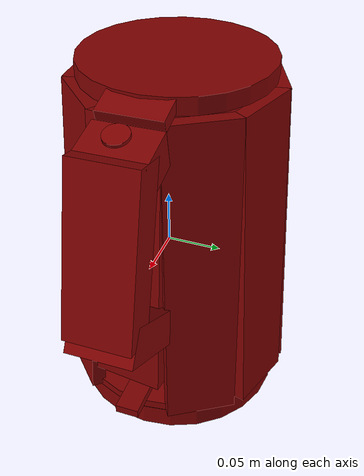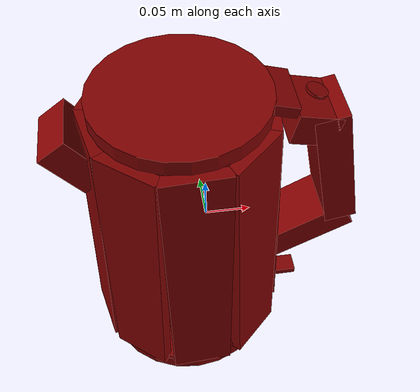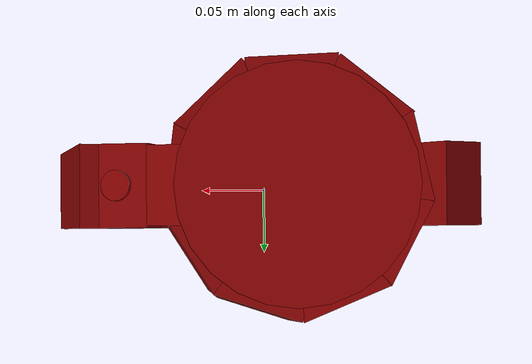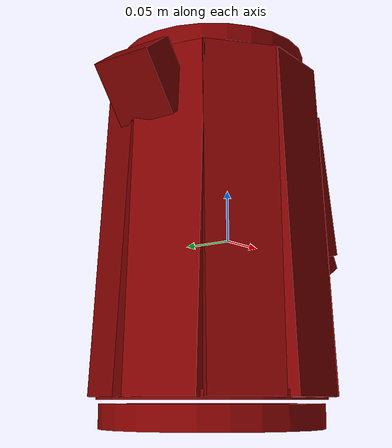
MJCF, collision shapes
<?xml version='1.0' encoding='UTF-8'?>
<mujoco model="model">
  <compiler angle="radian"/>
  <asset>
    <mesh file="visuals/Body001.obj" name="Body001_vis"/>
    <mesh file="visuals/Button001.obj" name="Button001_vis"/>
    <mesh file="visuals/Handle001.obj" name="Handle001_vis"/>
    <mesh file="visuals/Lever001.obj" name="Lever001_vis"/>
    <mesh file="visuals/Lid001.obj" name="Lid001_vis"/>
    <texture file="visuals/T_BC001.png" name="Body001_material" type="2d"/>
    <material name="Body001_material" rgba="1 1 1 1.0" texture="Body001_material" shininess="0.5" specular="0.3103448502657381"/>
    <texture file="visuals/T_BC001.png" name="Handle001_material" type="2d"/>
    <material name="Handle001_material" rgba="1 1 1 1.0" texture="Handle001_material" shininess="0.5" specular="0.3103448502657381"/>
    <texture file="visuals/T_BC001.png" name="Button001_material" type="2d"/>
    <material name="Button001_material" rgba="1 1 1 1.0" texture="Button001_material" shininess="0.5" specular="0.3103448502657381"/>
    <texture file="visuals/T_BC001.png" name="Lever001_material" type="2d"/>
    <material name="Lever001_material" rgba="1 1 1 1.0" texture="Lever001_material" shininess="0.5" specular="0.3103448502657381"/>
    <texture file="visuals/T_BC001.png" name="Lid001_material" type="2d"/>
    <material name="Lid001_material" rgba="1 1 1 1.0" texture="Lid001_material" shininess="0.5" specular="0.3103448502657381"/>
  </asset>
  <default>
    <default class="visual">
      <geom conaffinity="0" contype="0" group="1" type="mesh"/>
    </default>
    <default class="collision">
      <geom group="0" rgba="0.5 0 0 0.5"/>
    </default>
    <default class="spawn">
      <geom group="0" rgba="1 1 1 0.5" contype="0" conaffinity="0"/>
      <site group="0" rgba="1 1 1 0.5"/>
    </default>
    <default class="region">
      <geom group="1" conaffinity="0" contype="0" rgba="0 1 0 0"/>
    </default>
  </default>
  <worldbody>
    <body>
      <body name="object">
        <geom mesh="Body001_vis" type="mesh" solimp="0.998 0.998 0.001" solref="0.001 1" density="100" friction="0.95 0.3 0.1" class="visual" material="Body001_material"/>
        <geom class="collision" type="cylinder" pos="-0.024857325479388237 0.00047307158820331097 -0.16585730016231537" size="0.10320910811424255 0.011144384741783142" quat="1.0 0.0 0.0 0.0"/>
        <body name="Handle001">
          <joint axis="0.0 0.0 1.0" pos="5.21540641784668e-08 -1.3839763113310255e-08 0.006514817476272583" limited="true" name="Handle001_joint" range="0.0 0.1" type="slide" damping="1" frictionloss="1" armature=".01" stiffness="0.05"/>
          <geom mesh="Handle001_vis" type="mesh" solimp="0.998 0.998 0.001" solref="0.001 1" density="100" friction="0.95 0.3 0.1" class="visual" material="Handle001_material"/>
          <geom class="collision" type="box" pos="-0.02007926255464554 -0.0943201407790184 0.004749476909637451" size="0.03371613100171089 0.006794779561460018 0.15397880971431732" quat="0.9994276165962219 -0.026396609842777252 -0.0005586353363469243 0.02115102857351303"/>
          <geom class="collision" type="box" pos="-0.08264882862567902 -0.07359472662210464 0.004749476909637451" size="0.03371613472700119 0.006794779095798731 0.15397880971431732" quat="0.9439072608947754 -0.024930225685238838 0.008693511597812176 -0.3291534185409546"/>
          <geom class="collision" type="box" pos="-0.1156603991985321 -0.020610693842172623 0.004749476909637451" size="0.03371613100171089 0.006794779095798731 0.15397880971431732" quat="0.7819451093673706 -0.020652519538998604 0.01644890196621418 -0.6227878928184509"/>
          <geom class="collision" type="box" pos="-0.10713896155357361 0.0438399463891983 0.004749476909637451" size="0.03371613100171089 0.006794779095798731 0.15397880971431732" quat="0.5196210741996765 -0.013724088668823242 0.022555315867066383 -0.853988766670227"/>
          <geom class="collision" type="box" pos="-0.05938325822353363 0.08731915056705475 0.004749462008476257" size="0.03371613100171089 0.006794779095798731 0.15397880971431732" quat="0.19608604907989502 -0.005178970284759998 0.025889592245221138 -0.9802311658859253"/>
          <geom class="collision" type="box" pos="0.006132308393716812 0.08959393948316574 0.004749462008476257" size="0.03371613472700119 0.006794779095798731 0.15397880971431732" quat="0.1565304845571518 -0.004134239628911018 -0.026076827198266983 0.9873201847076416"/>
          <geom class="collision" type="box" pos="0.05647977814078331 0.05002927407622337 0.004749462008476257" size="0.03371613100171089 0.006794779095798731 0.15397880971431732" quat="0.482163667678833 -0.012734771706163883 -0.023128297179937363 0.8756832480430603"/>
          <geom class="collision" type="box" pos="0.06915576756000519 -0.011990945786237717 0.021813124418258667" size="0.03371613472700119 0.006794779095798731 0.13689130544662476" quat="0.7489936351776123 -0.019782204180955887 -0.017485899850726128 0.6620509624481201"/>
          <geom class="collision" type="box" pos="0.04122905060648918 -0.06864036619663239 0.004749462008476257" size="0.03371613100171089 0.006794779095798731 0.15397880971431732" quat="0.9279710650444031 -0.024509314447641373 -0.009817653335630894 0.3717157244682312"/>
          <geom class="collision" type="box" pos="0.11206722259521484 -0.00018389709293842316 -0.018444929271936417" size="0.017504960298538208 0.03018767386674881 0.050182562321424484" quat="0.8652689456939697 0.0 0.5013079643249512 0.0"/>
          <geom class="collision" type="box" pos="0.10182398557662964 -0.00018389709293842316 0.14013516902923584" size="0.017032591626048088 0.03018767386674881 0.02244277484714985" quat="0.7812394499778748 0.0 -0.6242314577102661 0.0"/>
          <geom class="collision" type="box" pos="0.13179261982440948 -0.00018389709293842316 0.07766880095005035" size="0.01750495843589306 0.03018767386674881 0.07697612792253494" quat="0.9942899942398071 0.0 -0.10671177506446838 0.0"/>
          <geom class="collision" type="box" pos="-0.12598015367984772 -0.00018389709293842316 0.12406209856271744" size="0.017234928905963898 0.03018767386674881 0.030076319351792336" quat="0.9491173624992371 0.0 -0.3149225413799286 0.0"/>
          <geom class="collision" type="cylinder" pos="-0.024857325479388237 0.00047307158820331097 -0.14691662788391113" size="0.10583113133907318 0.004288234282284975" quat="1.0 0.0 0.0 0.0"/>
          <body name="Button001">
            <joint axis="-0.3172944188117981 -6.942707742041421e-09 -0.9483271241188049" pos="0.1055387556552887 -0.00011677568545565009 0.16294069588184357" limited="true" name="Button001_joint" range="0.0 0.003" type="slide" damping="1" frictionloss="1" armature=".01" stiffness="0.05" springref="-0.8"/>
            <geom mesh="Button001_vis" type="mesh" solimp="0.998 0.998 0.001" solref="0.001 1" density="100" friction="0.95 0.3 0.1" class="visual" material="Button001_material"/>
            <geom class="collision" type="cylinder" pos="0.10602057725191116 -0.00011677567817969248 0.16445493698120117" size="0.01110115647315979 0.001456832978874445" quat="0.9881606101989746 2.408766460896888e-15 0.15342287719249725 2.061371873196549e-08"/>
          </body>
          <body name="Lever001">
            <joint axis="0.0 0.0 -1.0" pos="0.09349460899829865 -2.6310679857033392e-08 -0.1243370920419693" limited="true" name="Lever001_joint" range="0.0 0.01" type="slide" damping="1" frictionloss="1" armature=".01" stiffness="1" springref="-0.4"/>
            <geom mesh="Lever001_vis" type="mesh" solimp="0.998 0.998 0.001" solref="0.001 1" density="100" friction="0.95 0.3 0.1" class="visual" material="Lever001_material"/>
            <geom class="collision" type="box" pos="0.09435445815324783 -0.001545250415802002 -0.1243102103471756" size="0.01951584964990616 0.011114893481135368 0.004078427795320749" quat="1.0 0.0 0.0 0.0"/>
          </body>
          <body name="Lid001">
            <joint axis="0.0 1.0 0.0" pos="0.08308795094490051 1.9862614664134526e-08 0.16764721274375916" limited="true" name="Lid001_joint" range="0.0 1.5707963267948966" type="hinge" damping="1" frictionloss="1" armature=".01" stiffness="0.05"/>
            <geom mesh="Lid001_vis" type="mesh" solimp="0.998 0.998 0.001" solref="0.001 1" density="100" friction="0.95 0.3 0.1" class="visual" material="Lid001_material"/>
            <geom class="collision" type="cylinder" pos="-0.02333618327975273 0.00025576568441465497 0.17017686367034912" size="0.08763637393712997 0.007863394916057587" quat="1.0 0.0 0.0 0.0"/>
            <geom class="collision" type="box" pos="0.06812232732772827 0.00013921409845352173 0.16786417365074158" size="0.014696674421429634 0.02867818996310234 0.005792425014078617" quat="0.9903052449226379 0.0 0.13890822231769562 0.0"/>
          </body>
        </body>
        <geom class="region" name="reg_main" type="box" pos="0.0 0.0 9.53674295089968e-09" size="0.1569579690694809 0.10269506275653839 0.17648276686668396"/>
      </body>
    </body>
  </worldbody>
  <actuator>
    <motor name="Handle001_joint_actuator" joint="Handle001_joint" gear="10"/>
    <motor name="Button001_joint_actuator" joint="Button001_joint" gear="0.5"/>
    <motor name="Lever001_joint_actuator" joint="Lever001_joint" gear="0.5"/>
    <motor name="Lid001_joint_actuator" joint="Lid001_joint" gear="0.5"/>
  </actuator>
</mujoco>
